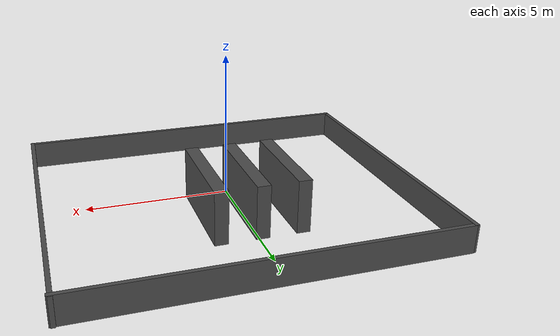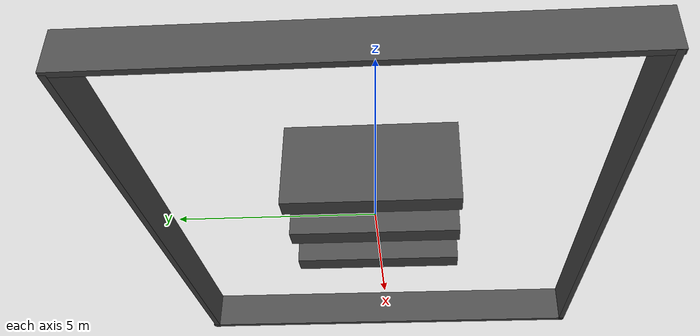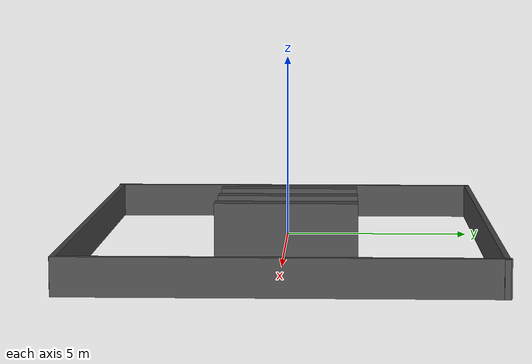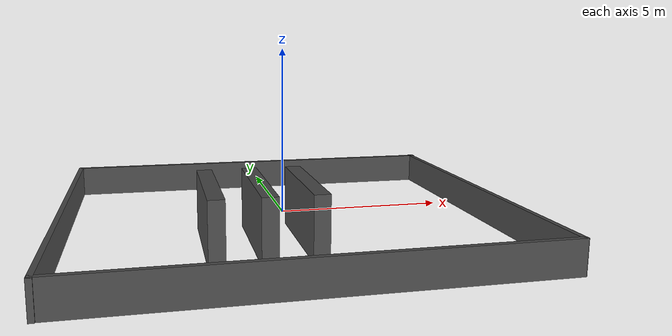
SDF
<?xml version='1.0'?>
<sdf version='1.7'>
  <model name='parede'>
    <link name='Wall_0'>
      <pose>-0.004951 -5.56026 0 0 -0 0</pose>
      <self_collide>0</self_collide>
      <enable_wind>0</enable_wind>
      <kinematic>0</kinematic>
      <inertial>
        <inertia>
          <ixx>0</ixx>
          <ixy>0</ixy>
          <ixz>0</ixz>
          <iyy>0</iyy>
          <iyz>0</iyz>
          <izz>0</izz>
        </inertia>
        <mass>0</mass>
        <pose>0 0 0 0 -0 0</pose>
      </inertial>
      <gravity>1</gravity>
      <visual name='Wall_0_Visual'>
        <pose>0 0 0 0 -0 0</pose>
        <geometry>
          <box>
            <size>13.1161 0.15 1</size>
          </box>
        </geometry>
        <material>
          <script>
            <uri>file://media/materials/scripts/gazebo.material</uri>
            <name>Gazebo/DarkGrey</name>
          </script>
          <ambient>0.5 0.5 0.5 1</ambient>
          <shader type='pixel'/>
        </material>
        <meta>
          <layer>0</layer>
        </meta>
        <transparency>0</transparency>
        <cast_shadows>1</cast_shadows>
      </visual>
      <collision name='Wall_0_Collision'>
        <laser_retro>0</laser_retro>
        <max_contacts>10</max_contacts>
        <pose>0 0 0 0 -0 0</pose>
        <geometry>
          <box>
            <size>13.1161 0.15 1</size>
          </box>
        </geometry>
        <surface>
          <friction>
            <ode>
              <mu>1</mu>
              <mu2>1</mu2>
              <fdir1>0 0 0</fdir1>
              <slip1>0</slip1>
              <slip2>0</slip2>
            </ode>
            <torsional>
              <coefficient>1</coefficient>
              <patch_radius>0</patch_radius>
              <surface_radius>0</surface_radius>
              <use_patch_radius>1</use_patch_radius>
              <ode>
                <slip>0</slip>
              </ode>
            </torsional>
          </friction>
          <bounce>
            <restitution_coefficient>0</restitution_coefficient>
            <threshold>1e+06</threshold>
          </bounce>
          <contact>
            <collide_without_contact>0</collide_without_contact>
            <collide_without_contact_bitmask>1</collide_without_contact_bitmask>
            <collide_bitmask>1</collide_bitmask>
            <ode>
              <soft_cfm>0</soft_cfm>
              <soft_erp>0.2</soft_erp>
              <kp>1e+13</kp>
              <kd>1</kd>
              <max_vel>0.01</max_vel>
              <min_depth>0</min_depth>
            </ode>
            <bullet>
              <split_impulse>1</split_impulse>
              <split_impulse_penetration_threshold>-0.01</split_impulse_penetration_threshold>
              <soft_cfm>0</soft_cfm>
              <soft_erp>0.2</soft_erp>
              <kp>1e+13</kp>
              <kd>1</kd>
            </bullet>
          </contact>
        </surface>
      </collision>
    </link>
    <link name='Wall_1'>
      <pose>0.061052 5.53717 0 0 -0 3.14</pose>
      <self_collide>0</self_collide>
      <enable_wind>0</enable_wind>
      <kinematic>0</kinematic>
      <inertial>
        <inertia>
          <ixx>0</ixx>
          <ixy>0</ixy>
          <ixz>0</ixz>
          <iyy>0</iyy>
          <iyz>0</iyz>
          <izz>0</izz>
        </inertia>
        <mass>0</mass>
        <pose>0 0 0 0 -0 0</pose>
      </inertial>
      <gravity>1</gravity>
      <visual name='Wall_1_Visual'>
        <pose>0 0 0 0 -0 0</pose>
        <geometry>
          <box>
            <size>13.1161 0.15 1</size>
          </box>
        </geometry>
        <material>
          <script>
            <uri>file://media/materials/scripts/gazebo.material</uri>
            <name>Gazebo/DarkGrey</name>
          </script>
          <ambient>0.5 0.5 0.5 1</ambient>
          <shader type='pixel'/>
        </material>
        <meta>
          <layer>0</layer>
        </meta>
        <transparency>0</transparency>
        <cast_shadows>1</cast_shadows>
      </visual>
      <collision name='Wall_1_Collision'>
        <laser_retro>0</laser_retro>
        <max_contacts>10</max_contacts>
        <pose>0 0 0 0 -0 0</pose>
        <geometry>
          <box>
            <size>13.1161 0.15 1</size>
          </box>
        </geometry>
        <surface>
          <friction>
            <ode>
              <mu>1</mu>
              <mu2>1</mu2>
              <fdir1>0 0 0</fdir1>
              <slip1>0</slip1>
              <slip2>0</slip2>
            </ode>
            <torsional>
              <coefficient>1</coefficient>
              <patch_radius>0</patch_radius>
              <surface_radius>0</surface_radius>
              <use_patch_radius>1</use_patch_radius>
              <ode>
                <slip>0</slip>
              </ode>
            </torsional>
          </friction>
          <bounce>
            <restitution_coefficient>0</restitution_coefficient>
            <threshold>1e+06</threshold>
          </bounce>
          <contact>
            <collide_without_contact>0</collide_without_contact>
            <collide_without_contact_bitmask>1</collide_without_contact_bitmask>
            <collide_bitmask>1</collide_bitmask>
            <ode>
              <soft_cfm>0</soft_cfm>
              <soft_erp>0.2</soft_erp>
              <kp>1e+13</kp>
              <kd>1</kd>
              <max_vel>0.01</max_vel>
              <min_depth>0</min_depth>
            </ode>
            <bullet>
              <split_impulse>1</split_impulse>
              <split_impulse_penetration_threshold>-0.01</split_impulse_penetration_threshold>
              <soft_cfm>0</soft_cfm>
              <soft_erp>0.2</soft_erp>
              <kp>1e+13</kp>
              <kd>1</kd>
            </bullet>
          </contact>
        </surface>
      </collision>
    </link>
    <link name='Wall_2'>
      <pose>6.5 0.005899 0 0 -0 1.57</pose>
      <self_collide>0</self_collide>
      <enable_wind>0</enable_wind>
      <kinematic>0</kinematic>
      <inertial>
        <inertia>
          <ixx>0</ixx>
          <ixy>0</ixy>
          <ixz>0</ixz>
          <iyy>0</iyy>
          <iyz>0</iyz>
          <izz>0</izz>
        </inertia>
        <mass>0</mass>
        <pose>0 0 0 0 -0 0</pose>
      </inertial>
      <gravity>1</gravity>
      <visual name='Wall_2_Visual'>
        <pose>0 0 0 0 -0 0</pose>
        <geometry>
          <box>
            <size>11.2703 0.15 1</size>
          </box>
        </geometry>
        <material>
          <script>
            <uri>file://media/materials/scripts/gazebo.material</uri>
            <name>Gazebo/DarkGrey</name>
          </script>
          <ambient>0.5 0.5 0.5 1</ambient>
          <shader type='pixel'/>
        </material>
        <meta>
          <layer>0</layer>
        </meta>
        <transparency>0</transparency>
        <cast_shadows>1</cast_shadows>
      </visual>
      <collision name='Wall_2_Collision'>
        <laser_retro>0</laser_retro>
        <max_contacts>10</max_contacts>
        <pose>0 0 0 0 -0 0</pose>
        <geometry>
          <box>
            <size>11.2703 0.15 1</size>
          </box>
        </geometry>
        <surface>
          <friction>
            <ode>
              <mu>1</mu>
              <mu2>1</mu2>
              <fdir1>0 0 0</fdir1>
              <slip1>0</slip1>
              <slip2>0</slip2>
            </ode>
            <torsional>
              <coefficient>1</coefficient>
              <patch_radius>0</patch_radius>
              <surface_radius>0</surface_radius>
              <use_patch_radius>1</use_patch_radius>
              <ode>
                <slip>0</slip>
              </ode>
            </torsional>
          </friction>
          <bounce>
            <restitution_coefficient>0</restitution_coefficient>
            <threshold>1e+06</threshold>
          </bounce>
          <contact>
            <collide_without_contact>0</collide_without_contact>
            <collide_without_contact_bitmask>1</collide_without_contact_bitmask>
            <collide_bitmask>1</collide_bitmask>
            <ode>
              <soft_cfm>0</soft_cfm>
              <soft_erp>0.2</soft_erp>
              <kp>1e+13</kp>
              <kd>1</kd>
              <max_vel>0.01</max_vel>
              <min_depth>0</min_depth>
            </ode>
            <bullet>
              <split_impulse>1</split_impulse>
              <split_impulse_penetration_threshold>-0.01</split_impulse_penetration_threshold>
              <soft_cfm>0</soft_cfm>
              <soft_erp>0.2</soft_erp>
              <kp>1e+13</kp>
              <kd>1</kd>
            </bullet>
          </contact>
        </surface>
      </collision>
    </link>
    <link name='Wall_2_clone'>
      <pose>-2.24531 -0.029726 0 0 -0 1.57</pose>
      <self_collide>0</self_collide>
      <enable_wind>0</enable_wind>
      <kinematic>0</kinematic>
      <inertial>
        <inertia>
          <ixx>0</ixx>
          <ixy>0</ixy>
          <ixz>0</ixz>
          <iyy>0</iyy>
          <iyz>0</iyz>
          <izz>0</izz>
        </inertia>
        <mass>0</mass>
        <pose>0 0 0 0 -0 0</pose>
      </inertial>
      <gravity>1</gravity>
      <visual name='Wall_2_Visual'>
        <pose>0 0 0 0 -0 0</pose>
        <geometry>
          <box>
            <size>4 0.5 2</size>
          </box>
        </geometry>
        <material>
          <script>
            <uri>file://media/materials/scripts/gazebo.material</uri>
            <name>Gazebo/DarkGrey</name>
          </script>
          <ambient>0.5 0.5 0.5 1</ambient>
          <shader type='pixel'>
            <normal_map>__default__</normal_map>
          </shader>
          <diffuse>0.175 0.175 0.175 1</diffuse>
          <specular>0.175 0.175 0.175 1</specular>
          <emissive>0 0 0 1</emissive>
        </material>
        <meta>
          <layer>0</layer>
        </meta>
        <transparency>0</transparency>
        <cast_shadows>1</cast_shadows>
      </visual>
      <collision name='Wall_2_Collision'>
        <laser_retro>0</laser_retro>
        <max_contacts>10</max_contacts>
        <pose>0 0 0 0 -0 0</pose>
        <geometry>
          <box>
            <size>5.08785 0.510514 4.37951</size>
          </box>
        </geometry>
        <surface>
          <friction>
            <ode>
              <mu>1</mu>
              <mu2>1</mu2>
              <fdir1>0 0 0</fdir1>
              <slip1>0</slip1>
              <slip2>0</slip2>
            </ode>
            <torsional>
              <coefficient>1</coefficient>
              <patch_radius>0</patch_radius>
              <surface_radius>0</surface_radius>
              <use_patch_radius>1</use_patch_radius>
              <ode>
                <slip>0</slip>
              </ode>
            </torsional>
          </friction>
          <bounce>
            <restitution_coefficient>0</restitution_coefficient>
            <threshold>1e+06</threshold>
          </bounce>
          <contact>
            <collide_without_contact>0</collide_without_contact>
            <collide_without_contact_bitmask>1</collide_without_contact_bitmask>
            <collide_bitmask>1</collide_bitmask>
            <ode>
              <soft_cfm>0</soft_cfm>
              <soft_erp>0.2</soft_erp>
              <kp>1e+13</kp>
              <kd>1</kd>
              <max_vel>0.01</max_vel>
              <min_depth>0</min_depth>
            </ode>
            <bullet>
              <split_impulse>1</split_impulse>
              <split_impulse_penetration_threshold>-0.01</split_impulse_penetration_threshold>
              <soft_cfm>0</soft_cfm>
              <soft_erp>0.2</soft_erp>
              <kp>1e+13</kp>
              <kd>1</kd>
            </bullet>
          </contact>
        </surface>
      </collision>
    </link>
    <link name='Wall_2_clone_clone'>
      <pose>-0.744238 -0.02514 0 0 -0 1.57</pose>
      <self_collide>0</self_collide>
      <enable_wind>0</enable_wind>
      <kinematic>0</kinematic>
      <inertial>
        <inertia>
          <ixx>0</ixx>
          <ixy>0</ixy>
          <ixz>0</ixz>
          <iyy>0</iyy>
          <iyz>0</iyz>
          <izz>0</izz>
        </inertia>
        <mass>0</mass>
        <pose>0 0 0 0 -0 0</pose>
      </inertial>
      <gravity>1</gravity>
      <visual name='Wall_2_Visual'>
        <pose>0 0 0 0 -0 0</pose>
        <geometry>
          <box>
            <size>4 0.5 2</size>
          </box>
        </geometry>
        <material>
          <script>
            <uri>file://media/materials/scripts/gazebo.material</uri>
            <name>Gazebo/DarkGrey</name>
          </script>
          <ambient>0.5 0.5 0.5 1</ambient>
          <shader type='pixel'>
            <normal_map>__default__</normal_map>
          </shader>
          <diffuse>0.175 0.175 0.175 1</diffuse>
          <specular>0.175 0.175 0.175 1</specular>
          <emissive>0 0 0 1</emissive>
        </material>
        <meta>
          <layer>0</layer>
        </meta>
        <transparency>0</transparency>
        <cast_shadows>1</cast_shadows>
      </visual>
      <collision name='Wall_2_Collision'>
        <laser_retro>0</laser_retro>
        <max_contacts>10</max_contacts>
        <pose>0 0 0 0 -0 0</pose>
        <geometry>
          <box>
            <size>5.08785 0.510514 4.37951</size>
          </box>
        </geometry>
        <surface>
          <friction>
            <ode>
              <mu>1</mu>
              <mu2>1</mu2>
              <fdir1>0 0 0</fdir1>
              <slip1>0</slip1>
              <slip2>0</slip2>
            </ode>
            <torsional>
              <coefficient>1</coefficient>
              <patch_radius>0</patch_radius>
              <surface_radius>0</surface_radius>
              <use_patch_radius>1</use_patch_radius>
              <ode>
                <slip>0</slip>
              </ode>
            </torsional>
          </friction>
          <bounce>
            <restitution_coefficient>0</restitution_coefficient>
            <threshold>1e+06</threshold>
          </bounce>
          <contact>
            <collide_without_contact>0</collide_without_contact>
            <collide_without_contact_bitmask>1</collide_without_contact_bitmask>
            <collide_bitmask>1</collide_bitmask>
            <ode>
              <soft_cfm>0</soft_cfm>
              <soft_erp>0.2</soft_erp>
              <kp>1e+13</kp>
              <kd>1</kd>
              <max_vel>0.01</max_vel>
              <min_depth>0</min_depth>
            </ode>
            <bullet>
              <split_impulse>1</split_impulse>
              <split_impulse_penetration_threshold>-0.01</split_impulse_penetration_threshold>
              <soft_cfm>0</soft_cfm>
              <soft_erp>0.2</soft_erp>
              <kp>1e+13</kp>
              <kd>1</kd>
            </bullet>
          </contact>
        </surface>
      </collision>
    </link>
    <link name='Wall_2_clone_clone_0'>
      <pose>0.749976 -0.024171 0 0 -0 1.57</pose>
      <self_collide>0</self_collide>
      <enable_wind>0</enable_wind>
      <kinematic>0</kinematic>
      <inertial>
        <inertia>
          <ixx>0</ixx>
          <ixy>0</ixy>
          <ixz>0</ixz>
          <iyy>0</iyy>
          <iyz>0</iyz>
          <izz>0</izz>
        </inertia>
        <mass>0</mass>
        <pose>0 0 0 0 -0 0</pose>
      </inertial>
      <gravity>1</gravity>
      <visual name='Wall_2_Visual'>
        <pose>0 0 0 0 -0 0</pose>
        <geometry>
          <box>
            <size>4 0.5 2</size>
          </box>
        </geometry>
        <material>
          <script>
            <uri>file://media/materials/scripts/gazebo.material</uri>
            <name>Gazebo/DarkGrey</name>
          </script>
          <ambient>0.5 0.5 0.5 1</ambient>
          <shader type='pixel'>
            <normal_map>__default__</normal_map>
          </shader>
          <diffuse>0.175 0.175 0.175 1</diffuse>
          <specular>0.175 0.175 0.175 1</specular>
          <emissive>0 0 0 1</emissive>
        </material>
        <meta>
          <layer>0</layer>
        </meta>
        <transparency>0</transparency>
        <cast_shadows>1</cast_shadows>
      </visual>
      <collision name='Wall_2_Collision'>
        <laser_retro>0</laser_retro>
        <max_contacts>10</max_contacts>
        <pose>0 0 0 0 -0 0</pose>
        <geometry>
          <box>
            <size>5.08785 0.510514 4.37951</size>
          </box>
        </geometry>
        <surface>
          <friction>
            <ode>
              <mu>1</mu>
              <mu2>1</mu2>
              <fdir1>0 0 0</fdir1>
              <slip1>0</slip1>
              <slip2>0</slip2>
            </ode>
            <torsional>
              <coefficient>1</coefficient>
              <patch_radius>0</patch_radius>
              <surface_radius>0</surface_radius>
              <use_patch_radius>1</use_patch_radius>
              <ode>
                <slip>0</slip>
              </ode>
            </torsional>
          </friction>
          <bounce>
            <restitution_coefficient>0</restitution_coefficient>
            <threshold>1e+06</threshold>
          </bounce>
          <contact>
            <collide_without_contact>0</collide_without_contact>
            <collide_without_contact_bitmask>1</collide_without_contact_bitmask>
            <collide_bitmask>1</collide_bitmask>
            <ode>
              <soft_cfm>0</soft_cfm>
              <soft_erp>0.2</soft_erp>
              <kp>1e+13</kp>
              <kd>1</kd>
              <max_vel>0.01</max_vel>
              <min_depth>0</min_depth>
            </ode>
            <bullet>
              <split_impulse>1</split_impulse>
              <split_impulse_penetration_threshold>-0.01</split_impulse_penetration_threshold>
              <soft_cfm>0</soft_cfm>
              <soft_erp>0.2</soft_erp>
              <kp>1e+13</kp>
              <kd>1</kd>
            </bullet>
          </contact>
        </surface>
      </collision>
    </link>
    <link name='Wall_3'>
      <pose>-6.49998 -0.025026 0 0 0 -1.57</pose>
      <self_collide>0</self_collide>
      <enable_wind>0</enable_wind>
      <kinematic>0</kinematic>
      <inertial>
        <inertia>
          <ixx>0</ixx>
          <ixy>0</ixy>
          <ixz>0</ixz>
          <iyy>0</iyy>
          <iyz>0</iyz>
          <izz>0</izz>
        </inertia>
        <mass>0</mass>
        <pose>0 0 0 0 -0 0</pose>
      </inertial>
      <gravity>1</gravity>
      <visual name='Wall_3_Visual'>
        <pose>0 0 0 0 -0 0</pose>
        <geometry>
          <box>
            <size>11.2703 0.15 1</size>
          </box>
        </geometry>
        <material>
          <script>
            <uri>file://media/materials/scripts/gazebo.material</uri>
            <name>Gazebo/DarkGrey</name>
          </script>
          <ambient>0.5 0.5 0.5 1</ambient>
          <shader type='pixel'/>
        </material>
        <meta>
          <layer>0</layer>
        </meta>
        <transparency>0</transparency>
        <cast_shadows>1</cast_shadows>
      </visual>
      <collision name='Wall_3_Collision'>
        <laser_retro>0</laser_retro>
        <max_contacts>10</max_contacts>
        <pose>0 0 0 0 -0 0</pose>
        <geometry>
          <box>
            <size>11.2703 0.15 1</size>
          </box>
        </geometry>
        <surface>
          <friction>
            <ode>
              <mu>1</mu>
              <mu2>1</mu2>
              <fdir1>0 0 0</fdir1>
              <slip1>0</slip1>
              <slip2>0</slip2>
            </ode>
            <torsional>
              <coefficient>1</coefficient>
              <patch_radius>0</patch_radius>
              <surface_radius>0</surface_radius>
              <use_patch_radius>1</use_patch_radius>
              <ode>
                <slip>0</slip>
              </ode>
            </torsional>
          </friction>
          <bounce>
            <restitution_coefficient>0</restitution_coefficient>
            <threshold>1e+06</threshold>
          </bounce>
          <contact>
            <collide_without_contact>0</collide_without_contact>
            <collide_without_contact_bitmask>1</collide_without_contact_bitmask>
            <collide_bitmask>1</collide_bitmask>
            <ode>
              <soft_cfm>0</soft_cfm>
              <soft_erp>0.2</soft_erp>
              <kp>1e+13</kp>
              <kd>1</kd>
              <max_vel>0.01</max_vel>
              <min_depth>0</min_depth>
            </ode>
            <bullet>
              <split_impulse>1</split_impulse>
              <split_impulse_penetration_threshold>-0.01</split_impulse_penetration_threshold>
              <soft_cfm>0</soft_cfm>
              <soft_erp>0.2</soft_erp>
              <kp>1e+13</kp>
              <kd>1</kd>
            </bullet>
          </contact>
        </surface>
      </collision>
    </link>
    <static>1</static>
    <allow_auto_disable>1</allow_auto_disable>
  </model>
</sdf>
